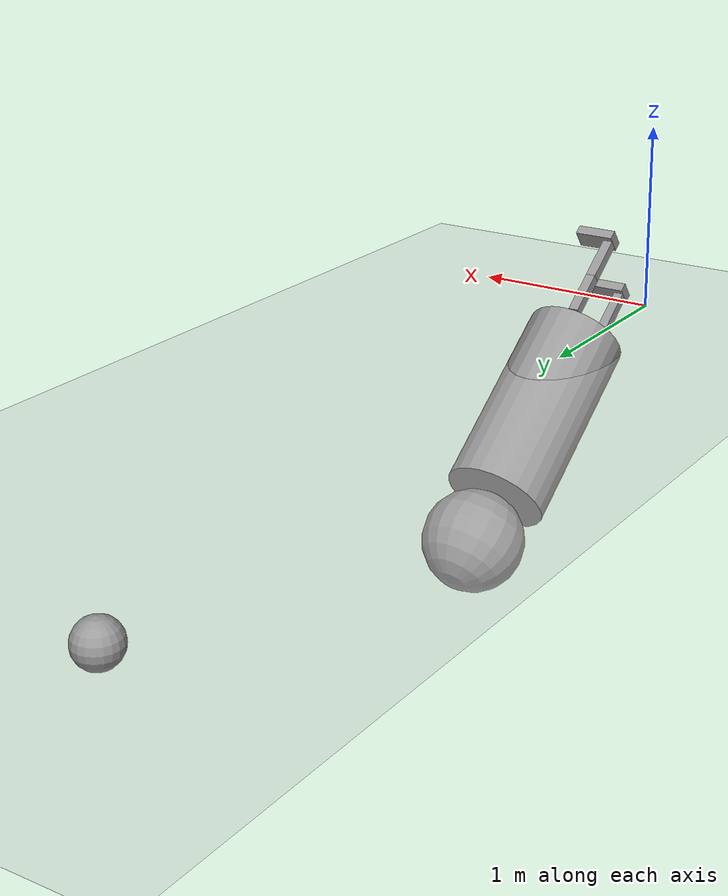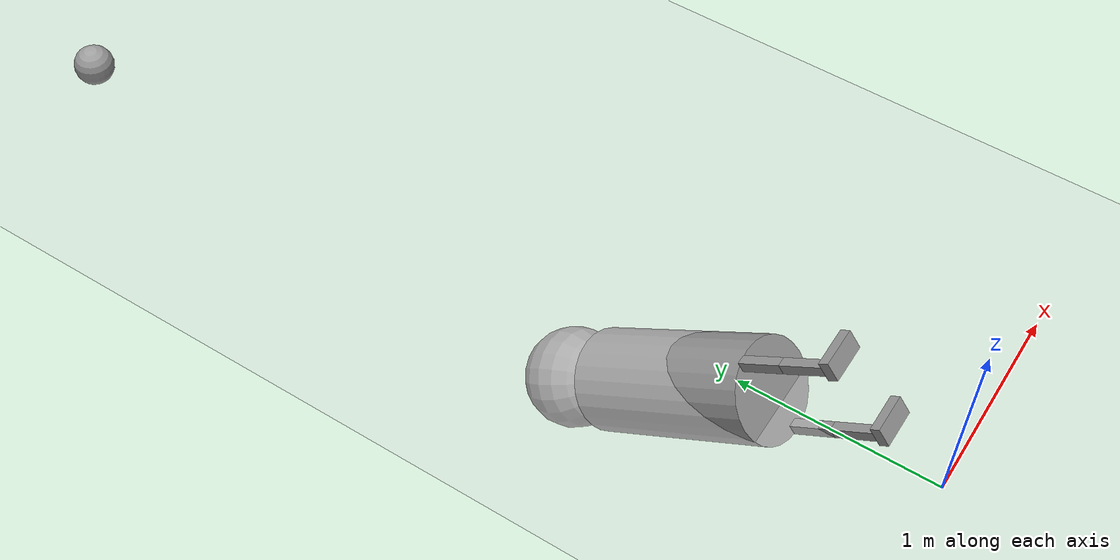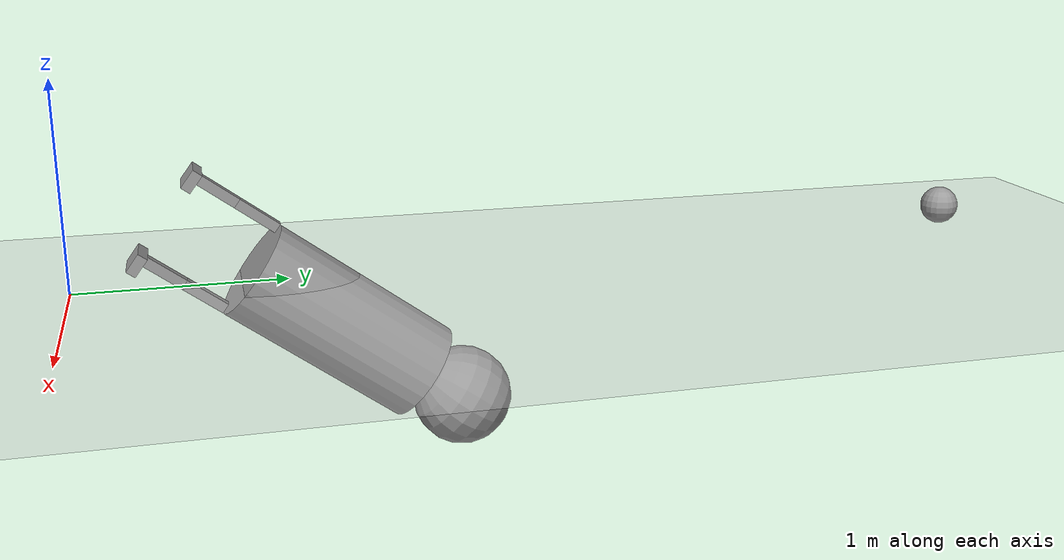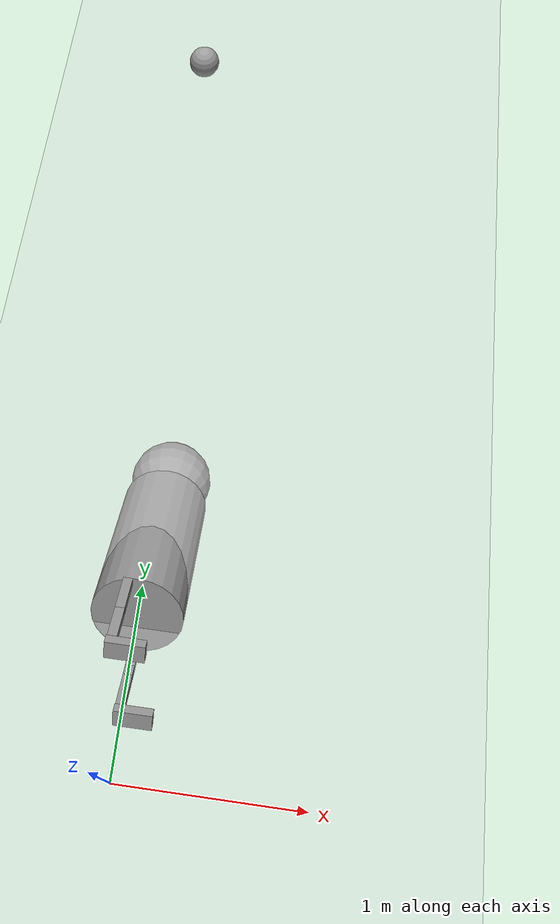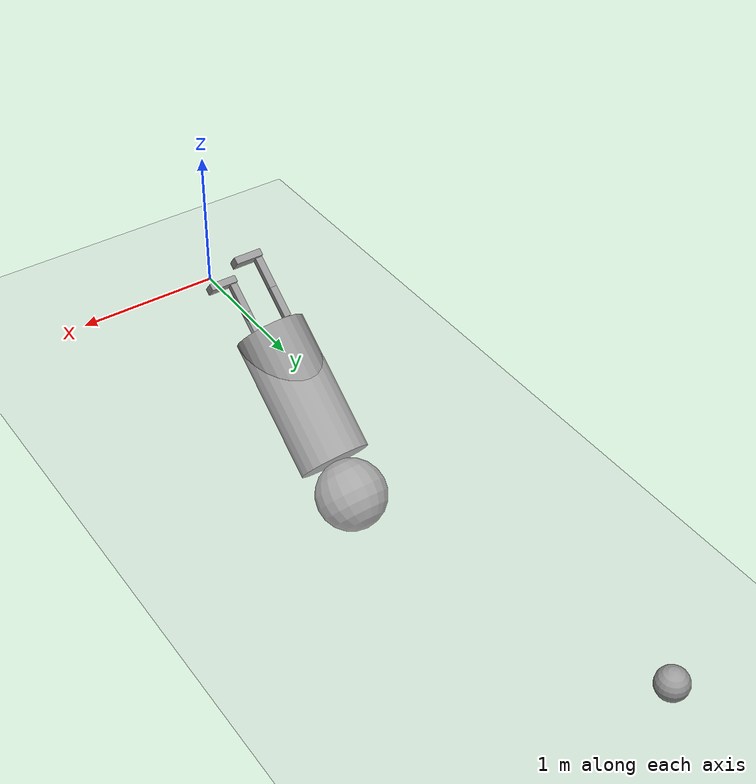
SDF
<sdf version="1.6">
 <world name="default">
  <model name="ground_plane">
   <static>1</static>
   <link name="link">
    <collision name="collision">
     <geometry><plane><normal>0 0 1</normal><size>100 100</size></plane></geometry>
     <surface>
      <contact><collide_bitmask>65535</collide_bitmask></contact>
      <friction><ode><mu>100</mu><mu2>50</mu2></ode></friction>
     </surface>
    </collision>
    <visual name="visual">
     <cast_shadows>0</cast_shadows>
     <geometry><plane><normal>0 0 1</normal><size>100 100</size></plane></geometry>
     <material>
      <script><uri>file://media/materials/scripts/gazebo.material</uri><name>Gazebo/Grey</name></script>
     </material>
    </visual>
   </link>
  </model>
  <model name="Android">
   <link name="link_0_clone">
    <pose>0.077813 0.225 -0.462714 0 -0 0</pose>
    <inertial>
     <mass>1</mass>
     <inertia>
      <ixx>0.166667</ixx>
      <ixy>0</ixy>
      <ixz>0</ixz>
      <iyy>0.166667</iyy>
      <iyz>0</iyz>
      <izz>0.166667</izz>
     </inertia>
    </inertial>
    <visual name="visual">
     <geometry><box><size>0.2 0.1 0.05</size></box></geometry>
     <material>
      <lighting>1</lighting>
      <script><uri>file://media/materials/scripts/gazebo.material</uri><name>Gazebo/Grey</name></script>
      <shader type="pixel"><normal_map>__default__</normal_map></shader>
      <ambient>0.3 0.3 0.3 1</ambient>
      <diffuse>0.7 0.7 0.7 1</diffuse>
      <specular>0.01 0.01 0.01 1</specular>
      <emissive>0 0 0 1</emissive>
     </material>
    </visual>
    <collision name="collision">
     <geometry><box><size>0.2 0.1 0.05</size></box></geometry>
     <surface>
      <friction>
       <ode><mu>1</mu><mu2>1</mu2><fdir1>0 0 0</fdir1><slip1>0</slip1><slip2>0</slip2></ode>
       <torsional>
        <coefficient>1</coefficient>
        <patch_radius>0</patch_radius>
        <surface_radius>0</surface_radius>
        <use_patch_radius>1</use_patch_radius>
        <ode><slip>0</slip></ode>
       </torsional>
      </friction>
      <bounce><restitution_coefficient>0</restitution_coefficient><threshold>1e+06</threshold></bounce>
      <contact>
       <collide_without_contact>0</collide_without_contact>
       <collide_without_contact_bitmask>1</collide_without_contact_bitmask>
       <collide_bitmask>1</collide_bitmask>
       <ode>
        <soft_cfm>0</soft_cfm>
        <soft_erp>0.2</soft_erp>
        <kp>1e+13</kp>
        <kd>1</kd>
        <max_vel>0.01</max_vel>
        <min_depth>0</min_depth>
       </ode>
       <bullet>
        <split_impulse>1</split_impulse>
        <split_impulse_penetration_threshold>-0.01</split_impulse_penetration_threshold>
        <soft_cfm>0</soft_cfm>
        <soft_erp>0.2</soft_erp>
        <kp>1e+13</kp>
        <kd>1</kd>
       </bullet>
      </contact>
     </surface>
    </collision>
   </link>
   <link name="link_0_clone_clone">
    <pose>0.020312 -0.225 -0.462144 0 -0 0</pose>
    <inertial>
     <mass>1</mass>
     <inertia>
      <ixx>0.166667</ixx>
      <ixy>0</ixy>
      <ixz>0</ixz>
      <iyy>0.166667</iyy>
      <iyz>0</iyz>
      <izz>0.166667</izz>
     </inertia>
    </inertial>
    <visual name="visual">
     <geometry><box><size>0.2 0.1 0.05</size></box></geometry>
     <material>
      <lighting>1</lighting>
      <script><uri>file://media/materials/scripts/gazebo.material</uri><name>Gazebo/Grey</name></script>
      <shader type="pixel"><normal_map>__default__</normal_map></shader>
      <ambient>0.3 0.3 0.3 1</ambient>
      <diffuse>0.7 0.7 0.7 1</diffuse>
      <specular>0.01 0.01 0.01 1</specular>
      <emissive>0 0 0 1</emissive>
     </material>
    </visual>
    <collision name="collision">
     <geometry><box><size>0.2 0.1 0.05</size></box></geometry>
     <surface>
      <friction>
       <ode><mu>1</mu><mu2>1</mu2><fdir1>0 0 0</fdir1><slip1>0</slip1><slip2>0</slip2></ode>
       <torsional>
        <coefficient>1</coefficient>
        <patch_radius>0</patch_radius>
        <surface_radius>0</surface_radius>
        <use_patch_radius>1</use_patch_radius>
        <ode><slip>0</slip></ode>
       </torsional>
      </friction>
      <bounce><restitution_coefficient>0</restitution_coefficient><threshold>1e+06</threshold></bounce>
      <contact>
       <collide_without_contact>0</collide_without_contact>
       <collide_without_contact_bitmask>1</collide_without_contact_bitmask>
       <collide_bitmask>1</collide_bitmask>
       <ode>
        <soft_cfm>0</soft_cfm>
        <soft_erp>0.2</soft_erp>
        <kp>1e+13</kp>
        <kd>1</kd>
        <max_vel>0.01</max_vel>
        <min_depth>0</min_depth>
       </ode>
       <bullet>
        <split_impulse>1</split_impulse>
        <split_impulse_penetration_threshold>-0.01</split_impulse_penetration_threshold>
        <soft_cfm>0</soft_cfm>
        <soft_erp>0.2</soft_erp>
        <kp>1e+13</kp>
        <kd>1</kd>
       </bullet>
      </contact>
     </surface>
    </collision>
   </link>
   <link name="link_1">
    <pose>-0.054688 -0.225 -0.099644 0 -0 0</pose>
    <inertial>
     <mass>1</mass>
     <inertia>
      <ixx>0.166667</ixx>
      <ixy>0</ixy>
      <ixz>0</ixz>
      <iyy>0.166667</iyy>
      <iyz>0</iyz>
      <izz>0.166667</izz>
     </inertia>
    </inertial>
    <visual name="visual">
     <geometry><box><size>0.05 0.05 0.225</size></box></geometry>
     <material>
      <lighting>1</lighting>
      <script><uri>file://media/materials/scripts/gazebo.material</uri><name>Gazebo/Grey</name></script>
      <shader type="pixel"><normal_map>__default__</normal_map></shader>
      <ambient>0.3 0.3 0.3 1</ambient>
      <diffuse>0.7 0.7 0.7 1</diffuse>
      <specular>0.01 0.01 0.01 1</specular>
      <emissive>0 0 0 1</emissive>
     </material>
    </visual>
    <collision name="collision">
     <geometry><box><size>0.05 0.05 0.225</size></box></geometry>
     <surface>
      <friction>
       <ode><mu>1</mu><mu2>1</mu2><fdir1>0 0 0</fdir1><slip1>0</slip1><slip2>0</slip2></ode>
       <torsional>
        <coefficient>1</coefficient>
        <patch_radius>0</patch_radius>
        <surface_radius>0</surface_radius>
        <use_patch_radius>1</use_patch_radius>
        <ode><slip>0</slip></ode>
       </torsional>
      </friction>
      <bounce><restitution_coefficient>0</restitution_coefficient><threshold>1e+06</threshold></bounce>
      <contact>
       <collide_without_contact>0</collide_without_contact>
       <collide_without_contact_bitmask>1</collide_without_contact_bitmask>
       <collide_bitmask>1</collide_bitmask>
       <ode>
        <soft_cfm>0</soft_cfm>
        <soft_erp>0.2</soft_erp>
        <kp>1e+13</kp>
        <kd>1</kd>
        <max_vel>0.01</max_vel>
        <min_depth>0</min_depth>
       </ode>
       <bullet>
        <split_impulse>1</split_impulse>
        <split_impulse_penetration_threshold>-0.01</split_impulse_penetration_threshold>
        <soft_cfm>0</soft_cfm>
        <soft_erp>0.2</soft_erp>
        <kp>1e+13</kp>
        <kd>1</kd>
       </bullet>
      </contact>
     </surface>
    </collision>
   </link>
   <link name="link_1_clone">
    <pose>-0.054688 -0.225 -0.324644 0 -0 0</pose>
    <inertial>
     <mass>1</mass>
     <inertia>
      <ixx>0.166667</ixx>
      <ixy>0</ixy>
      <ixz>0</ixz>
      <iyy>0.166667</iyy>
      <iyz>0</iyz>
      <izz>0.166667</izz>
     </inertia>
    </inertial>
    <visual name="visual">
     <geometry><box><size>0.05 0.05 0.225</size></box></geometry>
     <material>
      <lighting>1</lighting>
      <script><uri>file://media/materials/scripts/gazebo.material</uri><name>Gazebo/Grey</name></script>
      <shader type="pixel"><normal_map>__default__</normal_map></shader>
      <ambient>0.3 0.3 0.3 1</ambient>
      <diffuse>0.7 0.7 0.7 1</diffuse>
      <specular>0.01 0.01 0.01 1</specular>
      <emissive>0 0 0 1</emissive>
     </material>
    </visual>
    <collision name="collision">
     <geometry><box><size>0.05 0.05 0.225</size></box></geometry>
     <surface>
      <friction>
       <ode><mu>1</mu><mu2>1</mu2><fdir1>0 0 0</fdir1><slip1>0</slip1><slip2>0</slip2></ode>
       <torsional>
        <coefficient>1</coefficient>
        <patch_radius>0</patch_radius>
        <surface_radius>0</surface_radius>
        <use_patch_radius>1</use_patch_radius>
        <ode><slip>0</slip></ode>
       </torsional>
      </friction>
      <bounce><restitution_coefficient>0</restitution_coefficient><threshold>1e+06</threshold></bounce>
      <contact>
       <collide_without_contact>0</collide_without_contact>
       <collide_without_contact_bitmask>1</collide_without_contact_bitmask>
       <collide_bitmask>1</collide_bitmask>
       <ode>
        <soft_cfm>0</soft_cfm>
        <soft_erp>0.2</soft_erp>
        <kp>1e+13</kp>
        <kd>1</kd>
        <max_vel>0.01</max_vel>
        <min_depth>0</min_depth>
       </ode>
       <bullet>
        <split_impulse>1</split_impulse>
        <split_impulse_penetration_threshold>-0.01</split_impulse_penetration_threshold>
        <soft_cfm>0</soft_cfm>
        <soft_erp>0.2</soft_erp>
        <kp>1e+13</kp>
        <kd>1</kd>
       </bullet>
      </contact>
     </surface>
    </collision>
   </link>
   <link name="link_1_clone_clone">
    <pose>0.002813 0.225 -0.100214 0 -0 0</pose>
    <inertial>
     <mass>1</mass>
     <inertia>
      <ixx>0.166667</ixx>
      <ixy>0</ixy>
      <ixz>0</ixz>
      <iyy>0.166667</iyy>
      <iyz>0</iyz>
      <izz>0.166667</izz>
     </inertia>
    </inertial>
    <visual name="visual">
     <geometry><box><size>0.05 0.05 0.225</size></box></geometry>
     <material>
      <lighting>1</lighting>
      <script><uri>file://media/materials/scripts/gazebo.material</uri><name>Gazebo/Grey</name></script>
      <shader type="pixel"><normal_map>__default__</normal_map></shader>
      <ambient>0.3 0.3 0.3 1</ambient>
      <diffuse>0.7 0.7 0.7 1</diffuse>
      <specular>0.01 0.01 0.01 1</specular>
      <emissive>0 0 0 1</emissive>
     </material>
    </visual>
    <collision name="collision">
     <geometry><box><size>0.05 0.05 0.225</size></box></geometry>
     <surface>
      <friction>
       <ode><mu>1</mu><mu2>1</mu2><fdir1>0 0 0</fdir1><slip1>0</slip1><slip2>0</slip2></ode>
       <torsional>
        <coefficient>1</coefficient>
        <patch_radius>0</patch_radius>
        <surface_radius>0</surface_radius>
        <use_patch_radius>1</use_patch_radius>
        <ode><slip>0</slip></ode>
       </torsional>
      </friction>
      <bounce><restitution_coefficient>0</restitution_coefficient><threshold>1e+06</threshold></bounce>
      <contact>
       <collide_without_contact>0</collide_without_contact>
       <collide_without_contact_bitmask>1</collide_without_contact_bitmask>
       <collide_bitmask>1</collide_bitmask>
       <ode>
        <soft_cfm>0</soft_cfm>
        <soft_erp>0.2</soft_erp>
        <kp>1e+13</kp>
        <kd>1</kd>
        <max_vel>0.01</max_vel>
        <min_depth>0</min_depth>
       </ode>
       <bullet>
        <split_impulse>1</split_impulse>
        <split_impulse_penetration_threshold>-0.01</split_impulse_penetration_threshold>
        <soft_cfm>0</soft_cfm>
        <soft_erp>0.2</soft_erp>
        <kp>1e+13</kp>
        <kd>1</kd>
       </bullet>
      </contact>
     </surface>
    </collision>
   </link>
   <link name="link_1_clone_clone_clone">
    <pose>0.002813 0.225 -0.325214 0 -0 0</pose>
    <inertial>
     <mass>1</mass>
     <inertia>
      <ixx>0.166667</ixx>
      <ixy>0</ixy>
      <ixz>0</ixz>
      <iyy>0.166667</iyy>
      <iyz>0</iyz>
      <izz>0.166667</izz>
     </inertia>
    </inertial>
    <visual name="visual">
     <geometry><box><size>0.05 0.05 0.225</size></box></geometry>
     <material>
      <lighting>1</lighting>
      <script><uri>file://media/materials/scripts/gazebo.material</uri><name>Gazebo/Grey</name></script>
      <shader type="pixel"><normal_map>__default__</normal_map></shader>
      <ambient>0.3 0.3 0.3 1</ambient>
      <diffuse>0.7 0.7 0.7 1</diffuse>
      <specular>0.01 0.01 0.01 1</specular>
      <emissive>0 0 0 1</emissive>
     </material>
    </visual>
    <collision name="collision">
     <geometry><box><size>0.05 0.05 0.225</size></box></geometry>
     <surface>
      <friction>
       <ode><mu>1</mu><mu2>1</mu2><fdir1>0 0 0</fdir1><slip1>0</slip1><slip2>0</slip2></ode>
       <torsional>
        <coefficient>1</coefficient>
        <patch_radius>0</patch_radius>
        <surface_radius>0</surface_radius>
        <use_patch_radius>1</use_patch_radius>
        <ode><slip>0</slip></ode>
       </torsional>
      </friction>
      <bounce><restitution_coefficient>0</restitution_coefficient><threshold>1e+06</threshold></bounce>
      <contact>
       <collide_without_contact>0</collide_without_contact>
       <collide_without_contact_bitmask>1</collide_without_contact_bitmask>
       <collide_bitmask>1</collide_bitmask>
       <ode>
        <soft_cfm>0</soft_cfm>
        <soft_erp>0.2</soft_erp>
        <kp>1e+13</kp>
        <kd>1</kd>
        <max_vel>0.01</max_vel>
        <min_depth>0</min_depth>
       </ode>
       <bullet>
        <split_impulse>1</split_impulse>
        <split_impulse_penetration_threshold>-0.01</split_impulse_penetration_threshold>
        <soft_cfm>0</soft_cfm>
        <soft_erp>0.2</soft_erp>
        <kp>1e+13</kp>
        <kd>1</kd>
       </bullet>
      </contact>
     </surface>
    </collision>
   </link>
   <link name="link_2">
    <pose>0.002813 0 0.512286 0 -0 0</pose>
    <inertial>
     <mass>1</mass>
     <inertia><ixx>0.145833</ixx><ixy>0</ixy><ixz>0</ixz><iyy>0.145833</iyy><iyz>0</iyz><izz>0.125</izz></inertia>
    </inertial>
    <visual name="visual">
     <geometry><cylinder><radius>0.25</radius><length>1</length></cylinder></geometry>
     <material>
      <lighting>1</lighting>
      <script><uri>file://media/materials/scripts/gazebo.material</uri><name>Gazebo/Grey</name></script>
      <shader type="pixel"><normal_map>__default__</normal_map></shader>
      <ambient>0.3 0.3 0.3 1</ambient>
      <diffuse>0.7 0.7 0.7 1</diffuse>
      <specular>0.01 0.01 0.01 1</specular>
      <emissive>0 0 0 1</emissive>
     </material>
    </visual>
    <collision name="collision">
     <geometry><cylinder><radius>0.25</radius><length>1</length></cylinder></geometry>
     <surface>
      <friction>
       <ode><mu>1</mu><mu2>1</mu2><fdir1>0 0 0</fdir1><slip1>0</slip1><slip2>0</slip2></ode>
       <torsional>
        <coefficient>1</coefficient>
        <patch_radius>0</patch_radius>
        <surface_radius>0</surface_radius>
        <use_patch_radius>1</use_patch_radius>
        <ode><slip>0</slip></ode>
       </torsional>
      </friction>
      <bounce><restitution_coefficient>0</restitution_coefficient><threshold>1e+06</threshold></bounce>
      <contact>
       <collide_without_contact>0</collide_without_contact>
       <collide_without_contact_bitmask>1</collide_without_contact_bitmask>
       <collide_bitmask>1</collide_bitmask>
       <ode>
        <soft_cfm>0</soft_cfm>
        <soft_erp>0.2</soft_erp>
        <kp>1e+13</kp>
        <kd>1</kd>
        <max_vel>0.01</max_vel>
        <min_depth>0</min_depth>
       </ode>
       <bullet>
        <split_impulse>1</split_impulse>
        <split_impulse_penetration_threshold>-0.01</split_impulse_penetration_threshold>
        <soft_cfm>0</soft_cfm>
        <soft_erp>0.2</soft_erp>
        <kp>1e+13</kp>
        <kd>1</kd>
       </bullet>
      </contact>
     </surface>
    </collision>
   </link>
   <link name="link_3">
    <pose>0.002813 0 1.26229 0 -0 0</pose>
    <inertial>
     <mass>1</mass>
     <inertia><ixx>0.1</ixx><ixy>0</ixy><ixz>0</ixz><iyy>0.1</iyy><iyz>0</iyz><izz>0.1</izz></inertia>
    </inertial>
    <visual name="visual">
     <geometry><sphere><radius>0.25</radius></sphere></geometry>
     <material>
      <lighting>1</lighting>
      <script><uri>file://media/materials/scripts/gazebo.material</uri><name>Gazebo/Grey</name></script>
      <shader type="pixel"><normal_map>__default__</normal_map></shader>
      <ambient>0.3 0.3 0.3 1</ambient>
      <diffuse>0.7 0.7 0.7 1</diffuse>
      <specular>0.01 0.01 0.01 1</specular>
      <emissive>0 0 0 1</emissive>
     </material>
    </visual>
    <collision name="collision">
     <geometry><sphere><radius>0.25</radius></sphere></geometry>
     <surface>
      <friction>
       <ode><mu>1</mu><mu2>1</mu2><fdir1>0 0 0</fdir1><slip1>0</slip1><slip2>0</slip2></ode>
       <torsional>
        <coefficient>1</coefficient>
        <patch_radius>0</patch_radius>
        <surface_radius>0</surface_radius>
        <use_patch_radius>1</use_patch_radius>
        <ode><slip>0</slip></ode>
       </torsional>
      </friction>
      <bounce><restitution_coefficient>0</restitution_coefficient><threshold>1e+06</threshold></bounce>
      <contact>
       <collide_without_contact>0</collide_without_contact>
       <collide_without_contact_bitmask>1</collide_without_contact_bitmask>
       <collide_bitmask>1</collide_bitmask>
       <ode>
        <soft_cfm>0</soft_cfm>
        <soft_erp>0.2</soft_erp>
        <kp>1e+13</kp>
        <kd>1</kd>
        <max_vel>0.01</max_vel>
        <min_depth>0</min_depth>
       </ode>
       <bullet>
        <split_impulse>1</split_impulse>
        <split_impulse_penetration_threshold>-0.01</split_impulse_penetration_threshold>
        <soft_cfm>0</soft_cfm>
        <soft_erp>0.2</soft_erp>
        <kp>1e+13</kp>
        <kd>1</kd>
       </bullet>
      </contact>
     </surface>
    </collision>
   </link>
   <joint name="link_1_JOINT_14" type="revolute">
    <parent>link_1</parent>
    <child>link_1_clone</child>
    <axis>
     <xyz>-1 0 0</xyz>
     <use_parent_model_frame>0</use_parent_model_frame>
     <limit>
      <lower>-1.79769e+308</lower>
      <upper>1.79769e+308</upper>
      <effort>-1</effort>
      <velocity>-1</velocity>
     </limit>
     <dynamics>
      <spring_reference>0</spring_reference>
      <spring_stiffness>0</spring_stiffness>
      <damping>0</damping>
     </dynamics>
    </axis>
    <physics>
     <ode><limit><cfm>0</cfm><erp>0.2</erp></limit><suspension><cfm>0</cfm><erp>0.2</erp></suspension></ode>
    </physics>
   </joint>
   <joint name="link_1_clone_JOINT_15" type="revolute">
    <parent>link_1_clone</parent>
    <child>link_0_clone_clone</child>
    <axis>
     <xyz>1 0 0</xyz>
     <use_parent_model_frame>0</use_parent_model_frame>
     <limit>
      <lower>-1.79769e+308</lower>
      <upper>1.79769e+308</upper>
      <effort>-1</effort>
      <velocity>-1</velocity>
     </limit>
     <dynamics>
      <spring_reference>0</spring_reference>
      <spring_stiffness>0</spring_stiffness>
      <damping>0</damping>
     </dynamics>
    </axis>
    <physics>
     <ode><limit><cfm>0</cfm><erp>0.2</erp></limit><suspension><cfm>0</cfm><erp>0.2</erp></suspension></ode>
    </physics>
   </joint>
   <joint name="link_1_clone_clone_JOINT_11" type="revolute">
    <parent>link_1_clone_clone</parent>
    <child>link_1_clone_clone_clone</child>
    <axis>
     <xyz>-1 0 0</xyz>
     <use_parent_model_frame>0</use_parent_model_frame>
     <limit>
      <lower>-1.79769e+308</lower>
      <upper>1.79769e+308</upper>
      <effort>-1</effort>
      <velocity>-1</velocity>
     </limit>
     <dynamics>
      <spring_reference>0</spring_reference>
      <spring_stiffness>0</spring_stiffness>
      <damping>0</damping>
     </dynamics>
    </axis>
    <physics>
     <ode><limit><cfm>0</cfm><erp>0.2</erp></limit><suspension><cfm>0</cfm><erp>0.2</erp></suspension></ode>
    </physics>
   </joint>
   <joint name="link_1_clone_clone_clone_JOINT_12" type="revolute">
    <parent>link_1_clone_clone_clone</parent>
    <child>link_0_clone</child>
    <axis>
     <xyz>1 0 0</xyz>
     <use_parent_model_frame>0</use_parent_model_frame>
     <limit>
      <lower>-1.79769e+308</lower>
      <upper>1.79769e+308</upper>
      <effort>-1</effort>
      <velocity>-1</velocity>
     </limit>
     <dynamics>
      <spring_reference>0</spring_reference>
      <spring_stiffness>0</spring_stiffness>
      <damping>0</damping>
     </dynamics>
    </axis>
    <physics>
     <ode><limit><cfm>0</cfm><erp>0.2</erp></limit><suspension><cfm>0</cfm><erp>0.2</erp></suspension></ode>
    </physics>
   </joint>
   <joint name="link_2_JOINT_10" type="revolute">
    <parent>link_2</parent>
    <child>link_1_clone_clone</child>
    <axis>
     <xyz>1 0 0</xyz>
     <use_parent_model_frame>0</use_parent_model_frame>
     <limit>
      <lower>-1.79769e+308</lower>
      <upper>1.79769e+308</upper>
      <effort>-1</effort>
      <velocity>-1</velocity>
     </limit>
     <dynamics>
      <spring_reference>0</spring_reference>
      <spring_stiffness>0</spring_stiffness>
      <damping>0</damping>
     </dynamics>
    </axis>
    <physics>
     <ode><limit><cfm>0</cfm><erp>0.2</erp></limit><suspension><cfm>0</cfm><erp>0.2</erp></suspension></ode>
    </physics>
   </joint>
   <joint name="link_2_JOINT_13" type="revolute">
    <parent>link_2</parent>
    <child>link_1</child>
    <axis>
     <xyz>1 0 0</xyz>
     <use_parent_model_frame>0</use_parent_model_frame>
     <limit>
      <lower>-1.79769e+308</lower>
      <upper>1.79769e+308</upper>
      <effort>-1</effort>
      <velocity>-1</velocity>
     </limit>
     <dynamics>
      <spring_reference>0</spring_reference>
      <spring_stiffness>0</spring_stiffness>
      <damping>0</damping>
     </dynamics>
    </axis>
    <physics>
     <ode><limit><cfm>0</cfm><erp>0.2</erp></limit><suspension><cfm>0</cfm><erp>0.2</erp></suspension></ode>
    </physics>
   </joint>
   <joint name="link_3_JOINT_20" type="revolute">
    <parent>link_2</parent>
    <child>link_3</child>
    <axis>
     <xyz>0 0 1</xyz>
     <use_parent_model_frame>0</use_parent_model_frame>
     <limit>
      <lower>-1.79769e+308</lower>
      <upper>1.79769e+308</upper>
      <effort>-1</effort>
      <velocity>-1</velocity>
     </limit>
     <dynamics>
      <spring_reference>0</spring_reference>
      <spring_stiffness>0</spring_stiffness>
      <damping>0</damping>
     </dynamics>
    </axis>
    <physics>
     <ode><limit><cfm>0</cfm><erp>0.2</erp></limit><suspension><cfm>0</cfm><erp>0.2</erp></suspension></ode>
    </physics>
   </joint>
   <static>0</static>
   <pose>-0.001618 0.818507 0.069668 -2.20596 -0 -0.001507</pose>
  </model>
  <model name="my_ball">
   <link name="link_0">
    <inertial>
     <mass>1</mass>
     <inertia><ixx>0.1</ixx><ixy>0</ixy><ixz>0</ixz><iyy>0.1</iyy><iyz>0</iyz><izz>0.1</izz></inertia>
    </inertial>
    <visual name="visual">
     <geometry><sphere><radius>0.1</radius></sphere></geometry>
     <material>
      <lighting>1</lighting>
      <script><uri>file://media/materials/scripts/gazebo.material</uri><name>Gazebo/Grey</name></script>
      <shader type="pixel"><normal_map>__default__</normal_map></shader>
      <ambient>1 1 1 1</ambient>
      <diffuse>1 1 1 1</diffuse>
      <specular>1 1 1 1</specular>
      <emissive>1 1 1 1</emissive>
     </material>
    </visual>
    <collision name="collision">
     <geometry><sphere><radius>0.1</radius></sphere></geometry>
     <surface>
      <friction>
       <ode><mu>1</mu><mu2>1</mu2><fdir1>0 0 0</fdir1><slip1>0</slip1><slip2>0</slip2></ode>
       <torsional>
        <coefficient>1</coefficient>
        <patch_radius>0</patch_radius>
        <surface_radius>0</surface_radius>
        <use_patch_radius>1</use_patch_radius>
        <ode><slip>0</slip></ode>
       </torsional>
      </friction>
      <bounce><restitution_coefficient>0</restitution_coefficient><threshold>1e+06</threshold></bounce>
      <contact>
       <collide_without_contact>0</collide_without_contact>
       <collide_without_contact_bitmask>1</collide_without_contact_bitmask>
       <collide_bitmask>1</collide_bitmask>
       <ode>
        <soft_cfm>0</soft_cfm>
        <soft_erp>0.2</soft_erp>
        <kp>1e+13</kp>
        <kd>1</kd>
        <max_vel>0.01</max_vel>
        <min_depth>0</min_depth>
       </ode>
       <bullet>
        <split_impulse>1</split_impulse>
        <split_impulse_penetration_threshold>-0.01</split_impulse_penetration_threshold>
        <soft_cfm>0</soft_cfm>
        <soft_erp>0.2</soft_erp>
        <kp>1e+13</kp>
        <kd>1</kd>
       </bullet>
      </contact>
     </surface>
    </collision>
   </link>
   <static>0</static>
   <pose>-0.161585 4.58507 0.1 0 -0 0</pose>
  </model>
 </world>
</sdf>
